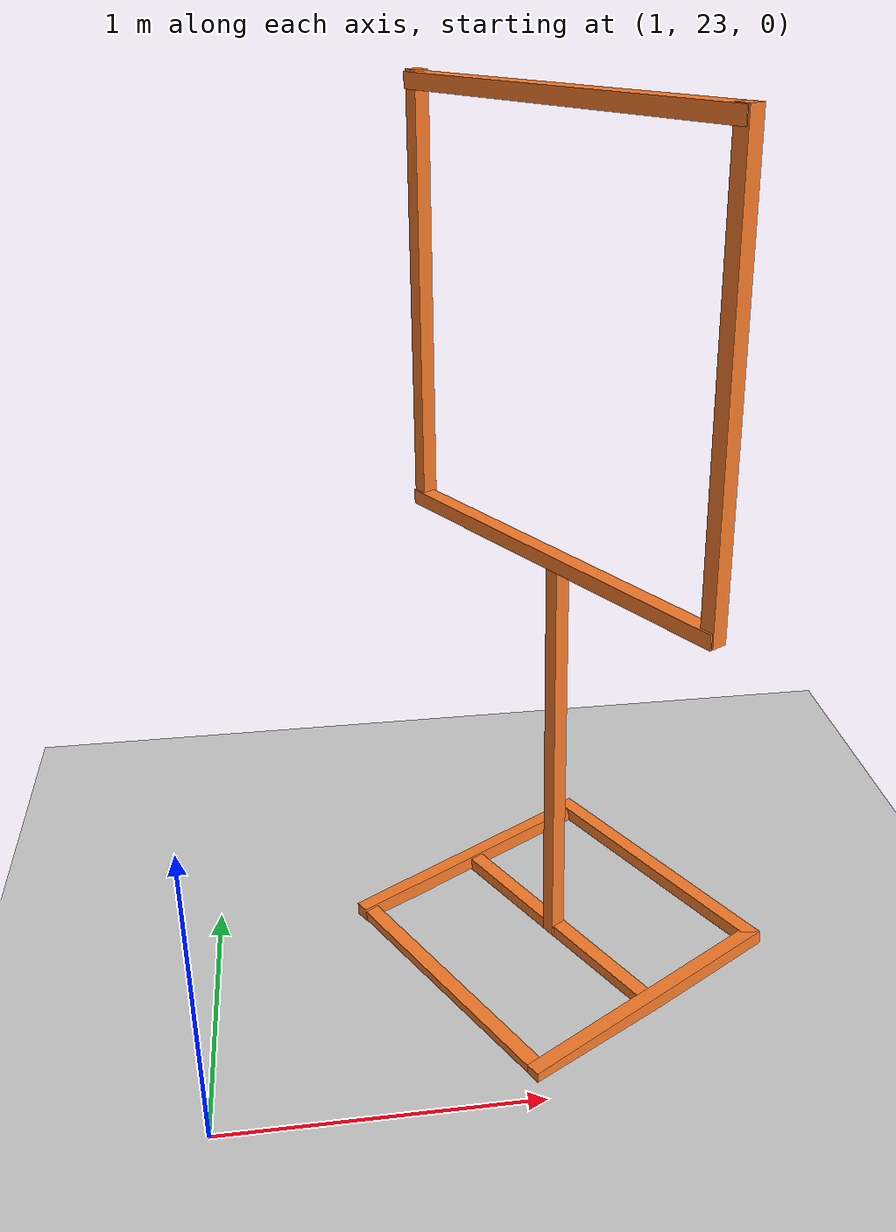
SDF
<sdf version="1.6">
 <world name="default">
  <model name="ground_plane">
   <static>1</static>
   <link name="link">
    <collision name="collision">
     <geometry><plane><normal>0 0 1</normal><size>100 100</size></plane></geometry>
     <surface><friction><ode><mu>100</mu><mu2>50</mu2></ode></friction></surface>
    </collision>
    <visual name="visual">
     <cast_shadows>0</cast_shadows>
     <geometry><plane><normal>0 0 1</normal><size>100 100</size></plane></geometry>
     <material>
      <script><uri>file://media/materials/scripts/gazebo.material</uri><name>Gazebo/Grey</name></script>
     </material>
    </visual>
    <velocity_decay><linear>0</linear><angular>0</angular></velocity_decay>
   </link>
  </model>
  <model name="closed_gate_clone_clone_clone_3">
   <link name="link">
    <inertial>
     <mass>1</mass>
     <inertia>
      <ixx>0.166667</ixx>
      <ixy>0</ixy>
      <ixz>0</ixz>
      <iyy>0.166667</iyy>
      <iyz>0</iyz>
      <izz>0.166667</izz>
     </inertia>
    </inertial>
    <pose>0.404756 -0.715724 1.41623 0 -0 0</pose>
    <visual name="visual">
     <geometry><box><size>0.05 0.05 1.4</size></box></geometry>
     <material>
      <script><name>Gazebo/Grey</name><uri>file://media/materials/scripts/gazebo.material</uri></script>
      <shader type="vertex"><normal_map>__default__</normal_map></shader>
      <ambient>0.976 0.484 0.164 1</ambient>
      <diffuse>0.976 0.484 0.164 1</diffuse>
      <specular>0.01 0.01 0.01 1</specular>
      <emissive>0 0 0 1</emissive>
     </material>
    </visual>
    <collision name="collision">
     <geometry><box><size>0.05 0.05 1.4</size></box></geometry>
     <surface>
      <friction>
       <ode><mu>1</mu><mu2>1</mu2><fdir1>0 0 0</fdir1><slip1>0</slip1><slip2>0</slip2></ode>
       <torsional>
        <coefficient>1</coefficient>
        <patch_radius>0</patch_radius>
        <surface_radius>0</surface_radius>
        <use_patch_radius>1</use_patch_radius>
        <ode><slip>0</slip></ode>
       </torsional>
      </friction>
      <bounce><restitution_coefficient>0</restitution_coefficient><threshold>1e+06</threshold></bounce>
      <contact>
       <collide_without_contact>0</collide_without_contact>
       <collide_without_contact_bitmask>1</collide_without_contact_bitmask>
       <collide_bitmask>1</collide_bitmask>
       <ode>
        <soft_cfm>0</soft_cfm>
        <soft_erp>0.2</soft_erp>
        <kp>1e+13</kp>
        <kd>1</kd>
        <max_vel>0.01</max_vel>
        <min_depth>0</min_depth>
       </ode>
       <bullet>
        <split_impulse>1</split_impulse>
        <split_impulse_penetration_threshold>-0.01</split_impulse_penetration_threshold>
        <soft_cfm>0</soft_cfm>
        <soft_erp>0.2</soft_erp>
        <kp>1e+13</kp>
        <kd>1</kd>
       </bullet>
      </contact>
     </surface>
    </collision>
   </link>
   <link name="link_clone_0_clone_0">
    <inertial>
     <mass>1</mass>
     <inertia>
      <ixx>0.166667</ixx>
      <ixy>0</ixy>
      <ixz>0</ixz>
      <iyy>0.166667</iyy>
      <iyz>0</iyz>
      <izz>0.166667</izz>
     </inertia>
    </inertial>
    <pose>1.11096 -0.693594 -0.667388 -1.57955 0.044957 -1.56415</pose>
    <visual name="visual">
     <geometry><box><size>0.05 0.05 1</size></box></geometry>
     <material>
      <script><name>Gazebo/Grey</name><uri>file://media/materials/scripts/gazebo.material</uri></script>
      <shader type="vertex"><normal_map>__default__</normal_map></shader>
      <ambient>0.976 0.484 0.164 1</ambient>
      <diffuse>0.976 0.484 0.164 1</diffuse>
      <specular>0.01 0.01 0.01 1</specular>
      <emissive>0 0 0 1</emissive>
     </material>
    </visual>
    <collision name="collision">
     <geometry><box><size>0.05 0.05 1</size></box></geometry>
     <surface>
      <friction>
       <ode><mu>1</mu><mu2>1</mu2><fdir1>0 0 0</fdir1><slip1>0</slip1><slip2>0</slip2></ode>
       <torsional>
        <coefficient>1</coefficient>
        <patch_radius>0</patch_radius>
        <surface_radius>0</surface_radius>
        <use_patch_radius>1</use_patch_radius>
        <ode><slip>0</slip></ode>
       </torsional>
      </friction>
      <bounce><restitution_coefficient>0</restitution_coefficient><threshold>1e+06</threshold></bounce>
      <contact>
       <collide_without_contact>0</collide_without_contact>
       <collide_without_contact_bitmask>1</collide_without_contact_bitmask>
       <collide_bitmask>1</collide_bitmask>
       <ode>
        <soft_cfm>0</soft_cfm>
        <soft_erp>0.2</soft_erp>
        <kp>1e+13</kp>
        <kd>1</kd>
        <max_vel>0.01</max_vel>
        <min_depth>0</min_depth>
       </ode>
       <bullet>
        <split_impulse>1</split_impulse>
        <split_impulse_penetration_threshold>-0.01</split_impulse_penetration_threshold>
        <soft_cfm>0</soft_cfm>
        <soft_erp>0.2</soft_erp>
        <kp>1e+13</kp>
        <kd>1</kd>
       </bullet>
      </contact>
     </surface>
    </collision>
   </link>
   <link name="link_clone_0_clone_0_clone">
    <inertial>
     <mass>1</mass>
     <inertia>
      <ixx>0.166667</ixx>
      <ixy>0</ixy>
      <ixz>0</ixz>
      <iyy>0.166667</iyy>
      <iyz>0</iyz>
      <izz>0.166667</izz>
     </inertia>
    </inertial>
    <pose>0.637485 -0.695511 -0.656732 -1.55146 -0.019345 0.017432</pose>
    <visual name="visual">
     <geometry><box><size>0.05 0.05 1</size></box></geometry>
     <material>
      <script><name>Gazebo/Grey</name><uri>file://media/materials/scripts/gazebo.material</uri></script>
      <shader type="vertex"><normal_map>__default__</normal_map></shader>
      <ambient>0.976 0.484 0.164 1</ambient>
      <diffuse>0.976 0.484 0.164 1</diffuse>
      <specular>0.01 0.01 0.01 1</specular>
      <emissive>0 0 0 1</emissive>
     </material>
    </visual>
    <collision name="collision">
     <geometry><box><size>0.05 0.05 1</size></box></geometry>
     <surface>
      <friction>
       <ode><mu>1</mu><mu2>1</mu2><fdir1>0 0 0</fdir1><slip1>0</slip1><slip2>0</slip2></ode>
       <torsional>
        <coefficient>1</coefficient>
        <patch_radius>0</patch_radius>
        <surface_radius>0</surface_radius>
        <use_patch_radius>1</use_patch_radius>
        <ode><slip>0</slip></ode>
       </torsional>
      </friction>
      <bounce><restitution_coefficient>0</restitution_coefficient><threshold>1e+06</threshold></bounce>
      <contact>
       <collide_without_contact>0</collide_without_contact>
       <collide_without_contact_bitmask>1</collide_without_contact_bitmask>
       <collide_bitmask>1</collide_bitmask>
       <ode>
        <soft_cfm>0</soft_cfm>
        <soft_erp>0.2</soft_erp>
        <kp>1e+13</kp>
        <kd>1</kd>
        <max_vel>0.01</max_vel>
        <min_depth>0</min_depth>
       </ode>
       <bullet>
        <split_impulse>1</split_impulse>
        <split_impulse_penetration_threshold>-0.01</split_impulse_penetration_threshold>
        <soft_cfm>0</soft_cfm>
        <soft_erp>0.2</soft_erp>
        <kp>1e+13</kp>
        <kd>1</kd>
       </bullet>
      </contact>
     </surface>
    </collision>
   </link>
   <link name="link_clone_0_clone_0_clone_0">
    <inertial>
     <mass>1</mass>
     <inertia>
      <ixx>0.166667</ixx>
      <ixy>0</ixy>
      <ixz>0</ixz>
      <iyy>0.166667</iyy>
      <iyz>0</iyz>
      <izz>0.166667</izz>
     </inertia>
    </inertial>
    <pose>1.12077 -1.16283 -0.677317 -1.57839 0.053451 -1.56287</pose>
    <visual name="visual">
     <geometry><box><size>0.05 0.05 1</size></box></geometry>
     <material>
      <script><name>Gazebo/Grey</name><uri>file://media/materials/scripts/gazebo.material</uri></script>
      <shader type="vertex"><normal_map>__default__</normal_map></shader>
      <ambient>0.976 0.484 0.164 1</ambient>
      <diffuse>0.976 0.484 0.164 1</diffuse>
      <specular>0.01 0.01 0.01 1</specular>
      <emissive>0 0 0 1</emissive>
     </material>
    </visual>
    <collision name="collision">
     <geometry><box><size>0.05 0.05 1</size></box></geometry>
     <surface>
      <friction>
       <ode><mu>1</mu><mu2>1</mu2><fdir1>0 0 0</fdir1><slip1>0</slip1><slip2>0</slip2></ode>
       <torsional>
        <coefficient>1</coefficient>
        <patch_radius>0</patch_radius>
        <surface_radius>0</surface_radius>
        <use_patch_radius>1</use_patch_radius>
        <ode><slip>0</slip></ode>
       </torsional>
      </friction>
      <bounce><restitution_coefficient>0</restitution_coefficient><threshold>1e+06</threshold></bounce>
      <contact>
       <collide_without_contact>0</collide_without_contact>
       <collide_without_contact_bitmask>1</collide_without_contact_bitmask>
       <collide_bitmask>1</collide_bitmask>
       <ode>
        <soft_cfm>0</soft_cfm>
        <soft_erp>0.2</soft_erp>
        <kp>1e+13</kp>
        <kd>1</kd>
        <max_vel>0.01</max_vel>
        <min_depth>0</min_depth>
       </ode>
       <bullet>
        <split_impulse>1</split_impulse>
        <split_impulse_penetration_threshold>-0.01</split_impulse_penetration_threshold>
        <soft_cfm>0</soft_cfm>
        <soft_erp>0.2</soft_erp>
        <kp>1e+13</kp>
        <kd>1</kd>
       </bullet>
      </contact>
     </surface>
    </collision>
   </link>
   <link name="link_clone_0_clone_0_clone_2">
    <inertial>
     <mass>1</mass>
     <inertia>
      <ixx>0.166667</ixx>
      <ixy>0</ixy>
      <ixz>0</ixz>
      <iyy>0.166667</iyy>
      <iyz>0</iyz>
      <izz>0.166667</izz>
     </inertia>
    </inertial>
    <pose>1.10088 -0.214462 -0.645898 -1.57451 0.053447 -1.56287</pose>
    <visual name="visual">
     <geometry><box><size>0.05 0.05 1</size></box></geometry>
     <material>
      <script><name>Gazebo/Grey</name><uri>file://media/materials/scripts/gazebo.material</uri></script>
      <shader type="vertex"><normal_map>__default__</normal_map></shader>
      <ambient>0.976 0.484 0.164 1</ambient>
      <diffuse>0.976 0.484 0.164 1</diffuse>
      <specular>0.01 0.01 0.01 1</specular>
      <emissive>0 0 0 1</emissive>
     </material>
    </visual>
    <collision name="collision">
     <geometry><box><size>0.05 0.05 1</size></box></geometry>
     <surface>
      <friction>
       <ode><mu>1</mu><mu2>1</mu2><fdir1>0 0 0</fdir1><slip1>0</slip1><slip2>0</slip2></ode>
       <torsional>
        <coefficient>1</coefficient>
        <patch_radius>0</patch_radius>
        <surface_radius>0</surface_radius>
        <use_patch_radius>1</use_patch_radius>
        <ode><slip>0</slip></ode>
       </torsional>
      </friction>
      <bounce><restitution_coefficient>0</restitution_coefficient><threshold>1e+06</threshold></bounce>
      <contact>
       <collide_without_contact>0</collide_without_contact>
       <collide_without_contact_bitmask>1</collide_without_contact_bitmask>
       <collide_bitmask>1</collide_bitmask>
       <ode>
        <soft_cfm>0</soft_cfm>
        <soft_erp>0.2</soft_erp>
        <kp>1e+13</kp>
        <kd>1</kd>
        <max_vel>0.01</max_vel>
        <min_depth>0</min_depth>
       </ode>
       <bullet>
        <split_impulse>1</split_impulse>
        <split_impulse_penetration_threshold>-0.01</split_impulse_penetration_threshold>
        <soft_cfm>0</soft_cfm>
        <soft_erp>0.2</soft_erp>
        <kp>1e+13</kp>
        <kd>1</kd>
       </bullet>
      </contact>
     </surface>
    </collision>
   </link>
   <link name="link_clone_0_clone_0_clone_clone">
    <inertial>
     <mass>1</mass>
     <inertia>
      <ixx>0.166667</ixx>
      <ixy>0</ixy>
      <ixz>0</ixz>
      <iyy>0.166667</iyy>
      <iyz>0</iyz>
      <izz>0.166667</izz>
     </inertia>
    </inertial>
    <pose>1.59453 -0.684923 -0.663241 -1.53838 -0.023075 0.018345</pose>
    <visual name="visual">
     <geometry><box><size>0.05 0.05 1</size></box></geometry>
     <material>
      <script><name>Gazebo/Grey</name><uri>file://media/materials/scripts/gazebo.material</uri></script>
      <shader type="vertex"><normal_map>__default__</normal_map></shader>
      <ambient>0.976 0.484 0.164 1</ambient>
      <diffuse>0.976 0.484 0.164 1</diffuse>
      <specular>0.01 0.01 0.01 1</specular>
      <emissive>0 0 0 1</emissive>
     </material>
    </visual>
    <collision name="collision">
     <geometry><box><size>0.05 0.05 1</size></box></geometry>
     <surface>
      <friction>
       <ode><mu>1</mu><mu2>1</mu2><fdir1>0 0 0</fdir1><slip1>0</slip1><slip2>0</slip2></ode>
       <torsional>
        <coefficient>1</coefficient>
        <patch_radius>0</patch_radius>
        <surface_radius>0</surface_radius>
        <use_patch_radius>1</use_patch_radius>
        <ode><slip>0</slip></ode>
       </torsional>
      </friction>
      <bounce><restitution_coefficient>0</restitution_coefficient><threshold>1e+06</threshold></bounce>
      <contact>
       <collide_without_contact>0</collide_without_contact>
       <collide_without_contact_bitmask>1</collide_without_contact_bitmask>
       <collide_bitmask>1</collide_bitmask>
       <ode>
        <soft_cfm>0</soft_cfm>
        <soft_erp>0.2</soft_erp>
        <kp>1e+13</kp>
        <kd>1</kd>
        <max_vel>0.01</max_vel>
        <min_depth>0</min_depth>
       </ode>
       <bullet>
        <split_impulse>1</split_impulse>
        <split_impulse_penetration_threshold>-0.01</split_impulse_penetration_threshold>
        <soft_cfm>0</soft_cfm>
        <soft_erp>0.2</soft_erp>
        <kp>1e+13</kp>
        <kd>1</kd>
       </bullet>
      </contact>
     </surface>
    </collision>
   </link>
   <link name="link_clone_0_clone_1">
    <inertial>
     <mass>1</mass>
     <inertia>
      <ixx>0.166667</ixx>
      <ixy>0</ixy>
      <ixz>0</ixz>
      <iyy>0.166667</iyy>
      <iyz>0</iyz>
      <izz>0.166667</izz>
     </inertia>
    </inertial>
    <pose>1.08198 -0.717602 0.744079 -1.56201 0.04483 -1.56244</pose>
    <visual name="visual">
     <geometry><box><size>0.05 0.05 1.4</size></box></geometry>
     <material>
      <script><name>Gazebo/Grey</name><uri>file://media/materials/scripts/gazebo.material</uri></script>
      <shader type="vertex"><normal_map>__default__</normal_map></shader>
      <ambient>0.976 0.484 0.164 1</ambient>
      <diffuse>0.976 0.484 0.164 1</diffuse>
      <specular>0.01 0.01 0.01 1</specular>
      <emissive>0 0 0 1</emissive>
     </material>
    </visual>
    <collision name="collision">
     <geometry><box><size>0.05 0.05 1.4</size></box></geometry>
     <surface>
      <friction>
       <ode><mu>1</mu><mu2>1</mu2><fdir1>0 0 0</fdir1><slip1>0</slip1><slip2>0</slip2></ode>
       <torsional>
        <coefficient>1</coefficient>
        <patch_radius>0</patch_radius>
        <surface_radius>0</surface_radius>
        <use_patch_radius>1</use_patch_radius>
        <ode><slip>0</slip></ode>
       </torsional>
      </friction>
      <bounce><restitution_coefficient>0</restitution_coefficient><threshold>1e+06</threshold></bounce>
      <contact>
       <collide_without_contact>0</collide_without_contact>
       <collide_without_contact_bitmask>1</collide_without_contact_bitmask>
       <collide_bitmask>1</collide_bitmask>
       <ode>
        <soft_cfm>0</soft_cfm>
        <soft_erp>0.2</soft_erp>
        <kp>1e+13</kp>
        <kd>1</kd>
        <max_vel>0.01</max_vel>
        <min_depth>0</min_depth>
       </ode>
       <bullet>
        <split_impulse>1</split_impulse>
        <split_impulse_penetration_threshold>-0.01</split_impulse_penetration_threshold>
        <soft_cfm>0</soft_cfm>
        <soft_erp>0.2</soft_erp>
        <kp>1e+13</kp>
        <kd>1</kd>
       </bullet>
      </contact>
     </surface>
    </collision>
   </link>
   <link name="link_clone_0_clone_1_clone">
    <inertial>
     <mass>1</mass>
     <inertia>
      <ixx>0.166667</ixx>
      <ixy>0</ixy>
      <ixz>0</ixz>
      <iyy>0.166667</iyy>
      <iyz>0</iyz>
      <izz>0.166667</izz>
     </inertia>
    </inertial>
    <pose>1.07529 -0.719849 2.09328 -1.55888 0.053444 -1.57124</pose>
    <visual name="visual">
     <geometry><box><size>0.05 0.05 1.4</size></box></geometry>
     <material>
      <script><name>Gazebo/Grey</name><uri>file://media/materials/scripts/gazebo.material</uri></script>
      <shader type="vertex"><normal_map>__default__</normal_map></shader>
      <ambient>0.976 0.484 0.164 1</ambient>
      <diffuse>0.976 0.484 0.164 1</diffuse>
      <specular>0.01 0.01 0.01 1</specular>
      <emissive>0 0 0 1</emissive>
     </material>
    </visual>
    <collision name="collision">
     <geometry><box><size>0.05 0.05 1.4</size></box></geometry>
     <surface>
      <friction>
       <ode><mu>1</mu><mu2>1</mu2><fdir1>0 0 0</fdir1><slip1>0</slip1><slip2>0</slip2></ode>
       <torsional>
        <coefficient>1</coefficient>
        <patch_radius>0</patch_radius>
        <surface_radius>0</surface_radius>
        <use_patch_radius>1</use_patch_radius>
        <ode><slip>0</slip></ode>
       </torsional>
      </friction>
      <bounce><restitution_coefficient>0</restitution_coefficient><threshold>1e+06</threshold></bounce>
      <contact>
       <collide_without_contact>0</collide_without_contact>
       <collide_without_contact_bitmask>1</collide_without_contact_bitmask>
       <collide_bitmask>1</collide_bitmask>
       <ode>
        <soft_cfm>0</soft_cfm>
        <soft_erp>0.2</soft_erp>
        <kp>1e+13</kp>
        <kd>1</kd>
        <max_vel>0.01</max_vel>
        <min_depth>0</min_depth>
       </ode>
       <bullet>
        <split_impulse>1</split_impulse>
        <split_impulse_penetration_threshold>-0.01</split_impulse_penetration_threshold>
        <soft_cfm>0</soft_cfm>
        <soft_erp>0.2</soft_erp>
        <kp>1e+13</kp>
        <kd>1</kd>
       </bullet>
      </contact>
     </surface>
    </collision>
   </link>
   <link name="link_clone_1">
    <inertial>
     <mass>1</mass>
     <inertia>
      <ixx>0.166667</ixx>
      <ixy>0</ixy>
      <ixz>0</ixz>
      <iyy>0.166667</iyy>
      <iyz>0</iyz>
      <izz>0.166667</izz>
     </inertia>
    </inertial>
    <pose>1.11167 -0.706269 0.02254 0.008527 -0.003582 0.001077</pose>
    <visual name="visual">
     <geometry><box><size>0.05 0.05 1.4</size></box></geometry>
     <material>
      <script><name>Gazebo/Grey</name><uri>file://media/materials/scripts/gazebo.material</uri></script>
      <shader type="vertex"><normal_map>__default__</normal_map></shader>
      <ambient>0.976 0.484 0.164 1</ambient>
      <diffuse>0.976 0.484 0.164 1</diffuse>
      <specular>0.01 0.01 0.01 1</specular>
      <emissive>0 0 0 1</emissive>
     </material>
    </visual>
    <collision name="collision">
     <geometry><box><size>0.05 0.05 1.4</size></box></geometry>
     <surface>
      <friction>
       <ode><mu>1</mu><mu2>1</mu2><fdir1>0 0 0</fdir1><slip1>0</slip1><slip2>0</slip2></ode>
       <torsional>
        <coefficient>1</coefficient>
        <patch_radius>0</patch_radius>
        <surface_radius>0</surface_radius>
        <use_patch_radius>1</use_patch_radius>
        <ode><slip>0</slip></ode>
       </torsional>
      </friction>
      <bounce><restitution_coefficient>0</restitution_coefficient><threshold>1e+06</threshold></bounce>
      <contact>
       <collide_without_contact>0</collide_without_contact>
       <collide_without_contact_bitmask>1</collide_without_contact_bitmask>
       <collide_bitmask>1</collide_bitmask>
       <ode>
        <soft_cfm>0</soft_cfm>
        <soft_erp>0.2</soft_erp>
        <kp>1e+13</kp>
        <kd>1</kd>
        <max_vel>0.01</max_vel>
        <min_depth>0</min_depth>
       </ode>
       <bullet>
        <split_impulse>1</split_impulse>
        <split_impulse_penetration_threshold>-0.01</split_impulse_penetration_threshold>
        <soft_cfm>0</soft_cfm>
        <soft_erp>0.2</soft_erp>
        <kp>1e+13</kp>
        <kd>1</kd>
       </bullet>
      </contact>
     </surface>
    </collision>
   </link>
   <link name="link_clone_7">
    <inertial>
     <mass>1</mass>
     <inertia>
      <ixx>0.166667</ixx>
      <ixy>0</ixy>
      <ixz>0</ixz>
      <iyy>0.166667</iyy>
      <iyz>0</iyz>
      <izz>0.166667</izz>
     </inertia>
    </inertial>
    <pose>1.75876 -0.711707 1.42733 0.008527 -0.003582 0.001077</pose>
    <visual name="visual">
     <geometry><box><size>0.05 0.05 1.4</size></box></geometry>
     <material>
      <script><name>Gazebo/Grey</name><uri>file://media/materials/scripts/gazebo.material</uri></script>
      <shader type="vertex"><normal_map>__default__</normal_map></shader>
      <ambient>0.976 0.484 0.164 1</ambient>
      <diffuse>0.976 0.484 0.164 1</diffuse>
      <specular>0.01 0.01 0.01 1</specular>
      <emissive>0 0 0 1</emissive>
     </material>
    </visual>
    <collision name="collision">
     <geometry><box><size>0.05 0.05 1.4</size></box></geometry>
     <surface>
      <friction>
       <ode><mu>1</mu><mu2>1</mu2><fdir1>0 0 0</fdir1><slip1>0</slip1><slip2>0</slip2></ode>
       <torsional>
        <coefficient>1</coefficient>
        <patch_radius>0</patch_radius>
        <surface_radius>0</surface_radius>
        <use_patch_radius>1</use_patch_radius>
        <ode><slip>0</slip></ode>
       </torsional>
      </friction>
      <bounce><restitution_coefficient>0</restitution_coefficient><threshold>1e+06</threshold></bounce>
      <contact>
       <collide_without_contact>0</collide_without_contact>
       <collide_without_contact_bitmask>1</collide_without_contact_bitmask>
       <collide_bitmask>1</collide_bitmask>
       <ode>
        <soft_cfm>0</soft_cfm>
        <soft_erp>0.2</soft_erp>
        <kp>1e+13</kp>
        <kd>1</kd>
        <max_vel>0.01</max_vel>
        <min_depth>0</min_depth>
       </ode>
       <bullet>
        <split_impulse>1</split_impulse>
        <split_impulse_penetration_threshold>-0.01</split_impulse_penetration_threshold>
        <soft_cfm>0</soft_cfm>
        <soft_erp>0.2</soft_erp>
        <kp>1e+13</kp>
        <kd>1</kd>
       </bullet>
      </contact>
     </surface>
    </collision>
   </link>
   <static>1</static>
   <pose>2.23055 25.0709 0.68342 0 0 -1.06639</pose>
  </model>
 </world>
</sdf>
